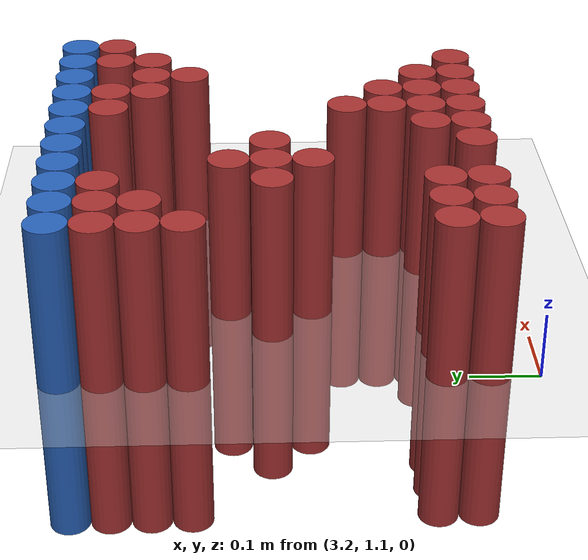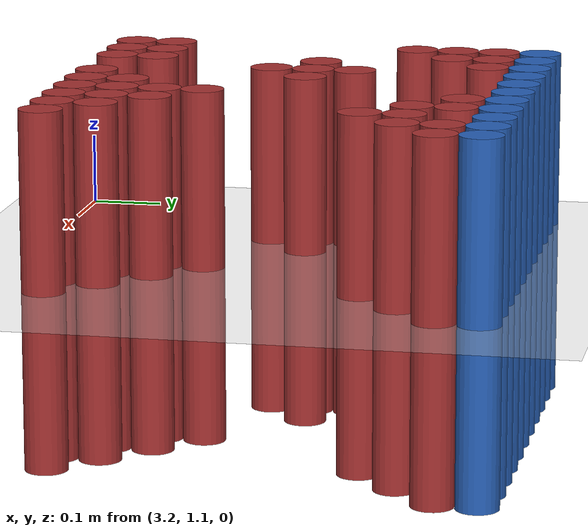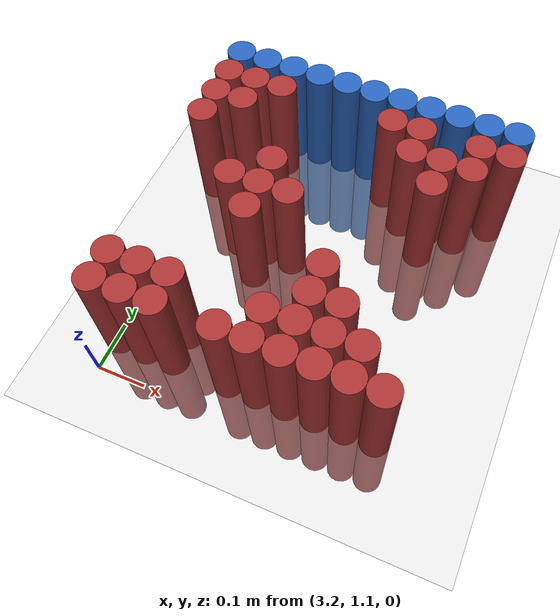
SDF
<sdf version="1.6">
 <world name="default">
  <model name="ground_plane">
   <static>1</static>
   <link name="link">
    <collision name="collision">
     <geometry><plane><normal>0 0 1</normal><size>100 100</size></plane></geometry>
     <surface><friction><ode><mu>100</mu><mu2>50</mu2></ode></friction></surface>
    </collision>
    <visual name="visual">
     <cast_shadows>0</cast_shadows>
     <geometry><plane><normal>0 0 1</normal><size>100 100</size></plane></geometry>
     <material>
      <script><uri>file://media/materials/scripts/gazebo.material</uri><name>Gazebo/Grey</name></script>
     </material>
    </visual>
   </link>
  </model>
  <model name="unit_cylinder_114">
   <static>1</static>
   <pose>3.210000 1.770000 0.000000 0.000000 0.000000 0.000000</pose>
   <link name="link">
    <inertial>
     <mass>1</mass>
     <inertia><ixx>0.145833</ixx><ixy>0</ixy><ixz>0</ixz><iyy>0.145833</iyy><iyz>0</iyz><izz>0.125</izz></inertia>
    </inertial>
    <collision name="collision">
     <geometry><cylinder><radius>0.030000</radius><length>0.5</length></cylinder></geometry>
    </collision>
    <visual name="visual">
     <geometry><cylinder><radius>0.030000</radius><length>0.5</length></cylinder></geometry>
     <material>
      <ambient>0.152000 0.379000 0.720000 1</ambient>
      <diffuse>0.152000 0.379000 0.720000 1</diffuse>
     </material>
     <material>
      <script><name>Gazebo/Grey</name><uri>file://media/materials/scripts/gazebo.material</uri></script>
     </material>
    </visual>
   </link>
  </model>
  <model name="unit_cylinder_115">
   <static>1</static>
   <pose>3.270000 1.770000 0.000000 0.000000 0.000000 0.000000</pose>
   <link name="link">
    <inertial>
     <mass>1</mass>
     <inertia><ixx>0.145833</ixx><ixy>0</ixy><ixz>0</ixz><iyy>0.145833</iyy><iyz>0</iyz><izz>0.125</izz></inertia>
    </inertial>
    <collision name="collision">
     <geometry><cylinder><radius>0.030000</radius><length>0.5</length></cylinder></geometry>
    </collision>
    <visual name="visual">
     <geometry><cylinder><radius>0.030000</radius><length>0.5</length></cylinder></geometry>
     <material>
      <ambient>0.152000 0.379000 0.720000 1</ambient>
      <diffuse>0.152000 0.379000 0.720000 1</diffuse>
     </material>
     <material>
      <script><name>Gazebo/Grey</name><uri>file://media/materials/scripts/gazebo.material</uri></script>
     </material>
    </visual>
   </link>
  </model>
  <model name="unit_cylinder_116">
   <static>1</static>
   <pose>3.330000 1.770000 0.000000 0.000000 0.000000 0.000000</pose>
   <link name="link">
    <inertial>
     <mass>1</mass>
     <inertia><ixx>0.145833</ixx><ixy>0</ixy><ixz>0</ixz><iyy>0.145833</iyy><iyz>0</iyz><izz>0.125</izz></inertia>
    </inertial>
    <collision name="collision">
     <geometry><cylinder><radius>0.030000</radius><length>0.5</length></cylinder></geometry>
    </collision>
    <visual name="visual">
     <geometry><cylinder><radius>0.030000</radius><length>0.5</length></cylinder></geometry>
     <material>
      <ambient>0.152000 0.379000 0.720000 1</ambient>
      <diffuse>0.152000 0.379000 0.720000 1</diffuse>
     </material>
     <material>
      <script><name>Gazebo/Grey</name><uri>file://media/materials/scripts/gazebo.material</uri></script>
     </material>
    </visual>
   </link>
  </model>
  <model name="unit_cylinder_117">
   <static>1</static>
   <pose>3.390000 1.770000 0.000000 0.000000 0.000000 0.000000</pose>
   <link name="link">
    <inertial>
     <mass>1</mass>
     <inertia><ixx>0.145833</ixx><ixy>0</ixy><ixz>0</ixz><iyy>0.145833</iyy><iyz>0</iyz><izz>0.125</izz></inertia>
    </inertial>
    <collision name="collision">
     <geometry><cylinder><radius>0.030000</radius><length>0.5</length></cylinder></geometry>
    </collision>
    <visual name="visual">
     <geometry><cylinder><radius>0.030000</radius><length>0.5</length></cylinder></geometry>
     <material>
      <ambient>0.152000 0.379000 0.720000 1</ambient>
      <diffuse>0.152000 0.379000 0.720000 1</diffuse>
     </material>
     <material>
      <script><name>Gazebo/Grey</name><uri>file://media/materials/scripts/gazebo.material</uri></script>
     </material>
    </visual>
   </link>
  </model>
  <model name="unit_cylinder_118">
   <static>1</static>
   <pose>3.450000 1.770000 0.000000 0.000000 0.000000 0.000000</pose>
   <link name="link">
    <inertial>
     <mass>1</mass>
     <inertia><ixx>0.145833</ixx><ixy>0</ixy><ixz>0</ixz><iyy>0.145833</iyy><iyz>0</iyz><izz>0.125</izz></inertia>
    </inertial>
    <collision name="collision">
     <geometry><cylinder><radius>0.030000</radius><length>0.5</length></cylinder></geometry>
    </collision>
    <visual name="visual">
     <geometry><cylinder><radius>0.030000</radius><length>0.5</length></cylinder></geometry>
     <material>
      <ambient>0.152000 0.379000 0.720000 1</ambient>
      <diffuse>0.152000 0.379000 0.720000 1</diffuse>
     </material>
     <material>
      <script><name>Gazebo/Grey</name><uri>file://media/materials/scripts/gazebo.material</uri></script>
     </material>
    </visual>
   </link>
  </model>
  <model name="unit_cylinder_119">
   <static>1</static>
   <pose>3.510000 1.770000 0.000000 0.000000 0.000000 0.000000</pose>
   <link name="link">
    <inertial>
     <mass>1</mass>
     <inertia><ixx>0.145833</ixx><ixy>0</ixy><ixz>0</ixz><iyy>0.145833</iyy><iyz>0</iyz><izz>0.125</izz></inertia>
    </inertial>
    <collision name="collision">
     <geometry><cylinder><radius>0.030000</radius><length>0.5</length></cylinder></geometry>
    </collision>
    <visual name="visual">
     <geometry><cylinder><radius>0.030000</radius><length>0.5</length></cylinder></geometry>
     <material>
      <ambient>0.152000 0.379000 0.720000 1</ambient>
      <diffuse>0.152000 0.379000 0.720000 1</diffuse>
     </material>
     <material>
      <script><name>Gazebo/Grey</name><uri>file://media/materials/scripts/gazebo.material</uri></script>
     </material>
    </visual>
   </link>
  </model>
  <model name="unit_cylinder_120">
   <static>1</static>
   <pose>3.570000 1.770000 0.000000 0.000000 0.000000 0.000000</pose>
   <link name="link">
    <inertial>
     <mass>1</mass>
     <inertia><ixx>0.145833</ixx><ixy>0</ixy><ixz>0</ixz><iyy>0.145833</iyy><iyz>0</iyz><izz>0.125</izz></inertia>
    </inertial>
    <collision name="collision">
     <geometry><cylinder><radius>0.030000</radius><length>0.5</length></cylinder></geometry>
    </collision>
    <visual name="visual">
     <geometry><cylinder><radius>0.030000</radius><length>0.5</length></cylinder></geometry>
     <material>
      <ambient>0.152000 0.379000 0.720000 1</ambient>
      <diffuse>0.152000 0.379000 0.720000 1</diffuse>
     </material>
     <material>
      <script><name>Gazebo/Grey</name><uri>file://media/materials/scripts/gazebo.material</uri></script>
     </material>
    </visual>
   </link>
  </model>
  <model name="unit_cylinder_121">
   <static>1</static>
   <pose>3.630000 1.770000 0.000000 0.000000 0.000000 0.000000</pose>
   <link name="link">
    <inertial>
     <mass>1</mass>
     <inertia><ixx>0.145833</ixx><ixy>0</ixy><ixz>0</ixz><iyy>0.145833</iyy><iyz>0</iyz><izz>0.125</izz></inertia>
    </inertial>
    <collision name="collision">
     <geometry><cylinder><radius>0.030000</radius><length>0.5</length></cylinder></geometry>
    </collision>
    <visual name="visual">
     <geometry><cylinder><radius>0.030000</radius><length>0.5</length></cylinder></geometry>
     <material>
      <ambient>0.152000 0.379000 0.720000 1</ambient>
      <diffuse>0.152000 0.379000 0.720000 1</diffuse>
     </material>
     <material>
      <script><name>Gazebo/Grey</name><uri>file://media/materials/scripts/gazebo.material</uri></script>
     </material>
    </visual>
   </link>
  </model>
  <model name="unit_cylinder_122">
   <static>1</static>
   <pose>3.690000 1.770000 0.000000 0.000000 0.000000 0.000000</pose>
   <link name="link">
    <inertial>
     <mass>1</mass>
     <inertia><ixx>0.145833</ixx><ixy>0</ixy><ixz>0</ixz><iyy>0.145833</iyy><iyz>0</iyz><izz>0.125</izz></inertia>
    </inertial>
    <collision name="collision">
     <geometry><cylinder><radius>0.030000</radius><length>0.5</length></cylinder></geometry>
    </collision>
    <visual name="visual">
     <geometry><cylinder><radius>0.030000</radius><length>0.5</length></cylinder></geometry>
     <material>
      <ambient>0.152000 0.379000 0.720000 1</ambient>
      <diffuse>0.152000 0.379000 0.720000 1</diffuse>
     </material>
     <material>
      <script><name>Gazebo/Grey</name><uri>file://media/materials/scripts/gazebo.material</uri></script>
     </material>
    </visual>
   </link>
  </model>
  <model name="unit_cylinder_123">
   <static>1</static>
   <pose>3.750000 1.770000 0.000000 0.000000 0.000000 0.000000</pose>
   <link name="link">
    <inertial>
     <mass>1</mass>
     <inertia><ixx>0.145833</ixx><ixy>0</ixy><ixz>0</ixz><iyy>0.145833</iyy><iyz>0</iyz><izz>0.125</izz></inertia>
    </inertial>
    <collision name="collision">
     <geometry><cylinder><radius>0.030000</radius><length>0.5</length></cylinder></geometry>
    </collision>
    <visual name="visual">
     <geometry><cylinder><radius>0.030000</radius><length>0.5</length></cylinder></geometry>
     <material>
      <ambient>0.152000 0.379000 0.720000 1</ambient>
      <diffuse>0.152000 0.379000 0.720000 1</diffuse>
     </material>
     <material>
      <script><name>Gazebo/Grey</name><uri>file://media/materials/scripts/gazebo.material</uri></script>
     </material>
    </visual>
   </link>
  </model>
  <model name="unit_cylinder_124">
   <static>1</static>
   <pose>3.810000 1.770000 0.000000 0.000000 0.000000 0.000000</pose>
   <link name="link">
    <inertial>
     <mass>1</mass>
     <inertia><ixx>0.145833</ixx><ixy>0</ixy><ixz>0</ixz><iyy>0.145833</iyy><iyz>0</iyz><izz>0.125</izz></inertia>
    </inertial>
    <collision name="collision">
     <geometry><cylinder><radius>0.030000</radius><length>0.5</length></cylinder></geometry>
    </collision>
    <visual name="visual">
     <geometry><cylinder><radius>0.030000</radius><length>0.5</length></cylinder></geometry>
     <material>
      <ambient>0.152000 0.379000 0.720000 1</ambient>
      <diffuse>0.152000 0.379000 0.720000 1</diffuse>
     </material>
     <material>
      <script><name>Gazebo/Grey</name><uri>file://media/materials/scripts/gazebo.material</uri></script>
     </material>
    </visual>
   </link>
  </model>
  <model name="unit_cylinder_136">
   <static>1</static>
   <pose>3.210000 1.710000 0.000000 0.000000 0.000000 0.000000</pose>
   <link name="link">
    <inertial>
     <mass>1</mass>
     <inertia><ixx>0.145833</ixx><ixy>0</ixy><ixz>0</ixz><iyy>0.145833</iyy><iyz>0</iyz><izz>0.125</izz></inertia>
    </inertial>
    <collision name="collision">
     <geometry><cylinder><radius>0.030000</radius><length>0.5</length></cylinder></geometry>
    </collision>
    <visual name="visual">
     <geometry><cylinder><radius>0.030000</radius><length>0.5</length></cylinder></geometry>
     <material>
      <ambient>0.648000 0.192000 0.192000 1</ambient>
      <diffuse>0.648000 0.192000 0.192000 1</diffuse>
     </material>
     <material>
      <script><name>Gazebo/Grey</name><uri>file://media/materials/scripts/gazebo.material</uri></script>
     </material>
    </visual>
   </link>
  </model>
  <model name="unit_cylinder_137">
   <static>1</static>
   <pose>3.270000 1.710000 0.000000 0.000000 0.000000 0.000000</pose>
   <link name="link">
    <inertial>
     <mass>1</mass>
     <inertia><ixx>0.145833</ixx><ixy>0</ixy><ixz>0</ixz><iyy>0.145833</iyy><iyz>0</iyz><izz>0.125</izz></inertia>
    </inertial>
    <collision name="collision">
     <geometry><cylinder><radius>0.030000</radius><length>0.5</length></cylinder></geometry>
    </collision>
    <visual name="visual">
     <geometry><cylinder><radius>0.030000</radius><length>0.5</length></cylinder></geometry>
     <material>
      <ambient>0.648000 0.192000 0.192000 1</ambient>
      <diffuse>0.648000 0.192000 0.192000 1</diffuse>
     </material>
     <material>
      <script><name>Gazebo/Grey</name><uri>file://media/materials/scripts/gazebo.material</uri></script>
     </material>
    </visual>
   </link>
  </model>
  <model name="unit_cylinder_138">
   <static>1</static>
   <pose>3.330000 1.710000 0.000000 0.000000 0.000000 0.000000</pose>
   <link name="link">
    <inertial>
     <mass>1</mass>
     <inertia><ixx>0.145833</ixx><ixy>0</ixy><ixz>0</ixz><iyy>0.145833</iyy><iyz>0</iyz><izz>0.125</izz></inertia>
    </inertial>
    <collision name="collision">
     <geometry><cylinder><radius>0.030000</radius><length>0.5</length></cylinder></geometry>
    </collision>
    <visual name="visual">
     <geometry><cylinder><radius>0.030000</radius><length>0.5</length></cylinder></geometry>
     <material>
      <ambient>0.648000 0.192000 0.192000 1</ambient>
      <diffuse>0.648000 0.192000 0.192000 1</diffuse>
     </material>
     <material>
      <script><name>Gazebo/Grey</name><uri>file://media/materials/scripts/gazebo.material</uri></script>
     </material>
    </visual>
   </link>
  </model>
  <model name="unit_cylinder_139">
   <static>1</static>
   <pose>3.570000 1.710000 0.000000 0.000000 0.000000 0.000000</pose>
   <link name="link">
    <inertial>
     <mass>1</mass>
     <inertia><ixx>0.145833</ixx><ixy>0</ixy><ixz>0</ixz><iyy>0.145833</iyy><iyz>0</iyz><izz>0.125</izz></inertia>
    </inertial>
    <collision name="collision">
     <geometry><cylinder><radius>0.030000</radius><length>0.5</length></cylinder></geometry>
    </collision>
    <visual name="visual">
     <geometry><cylinder><radius>0.030000</radius><length>0.5</length></cylinder></geometry>
     <material>
      <ambient>0.648000 0.192000 0.192000 1</ambient>
      <diffuse>0.648000 0.192000 0.192000 1</diffuse>
     </material>
     <material>
      <script><name>Gazebo/Grey</name><uri>file://media/materials/scripts/gazebo.material</uri></script>
     </material>
    </visual>
   </link>
  </model>
  <model name="unit_cylinder_140">
   <static>1</static>
   <pose>3.630000 1.710000 0.000000 0.000000 0.000000 0.000000</pose>
   <link name="link">
    <inertial>
     <mass>1</mass>
     <inertia><ixx>0.145833</ixx><ixy>0</ixy><ixz>0</ixz><iyy>0.145833</iyy><iyz>0</iyz><izz>0.125</izz></inertia>
    </inertial>
    <collision name="collision">
     <geometry><cylinder><radius>0.030000</radius><length>0.5</length></cylinder></geometry>
    </collision>
    <visual name="visual">
     <geometry><cylinder><radius>0.030000</radius><length>0.5</length></cylinder></geometry>
     <material>
      <ambient>0.648000 0.192000 0.192000 1</ambient>
      <diffuse>0.648000 0.192000 0.192000 1</diffuse>
     </material>
     <material>
      <script><name>Gazebo/Grey</name><uri>file://media/materials/scripts/gazebo.material</uri></script>
     </material>
    </visual>
   </link>
  </model>
  <model name="unit_cylinder_141">
   <static>1</static>
   <pose>3.750000 1.710000 0.000000 0.000000 0.000000 0.000000</pose>
   <link name="link">
    <inertial>
     <mass>1</mass>
     <inertia><ixx>0.145833</ixx><ixy>0</ixy><ixz>0</ixz><iyy>0.145833</iyy><iyz>0</iyz><izz>0.125</izz></inertia>
    </inertial>
    <collision name="collision">
     <geometry><cylinder><radius>0.030000</radius><length>0.5</length></cylinder></geometry>
    </collision>
    <visual name="visual">
     <geometry><cylinder><radius>0.030000</radius><length>0.5</length></cylinder></geometry>
     <material>
      <ambient>0.648000 0.192000 0.192000 1</ambient>
      <diffuse>0.648000 0.192000 0.192000 1</diffuse>
     </material>
     <material>
      <script><name>Gazebo/Grey</name><uri>file://media/materials/scripts/gazebo.material</uri></script>
     </material>
    </visual>
   </link>
  </model>
  <model name="unit_cylinder_142">
   <static>1</static>
   <pose>3.810000 1.710000 0.000000 0.000000 0.000000 0.000000</pose>
   <link name="link">
    <inertial>
     <mass>1</mass>
     <inertia><ixx>0.145833</ixx><ixy>0</ixy><ixz>0</ixz><iyy>0.145833</iyy><iyz>0</iyz><izz>0.125</izz></inertia>
    </inertial>
    <collision name="collision">
     <geometry><cylinder><radius>0.030000</radius><length>0.5</length></cylinder></geometry>
    </collision>
    <visual name="visual">
     <geometry><cylinder><radius>0.030000</radius><length>0.5</length></cylinder></geometry>
     <material>
      <ambient>0.648000 0.192000 0.192000 1</ambient>
      <diffuse>0.648000 0.192000 0.192000 1</diffuse>
     </material>
     <material>
      <script><name>Gazebo/Grey</name><uri>file://media/materials/scripts/gazebo.material</uri></script>
     </material>
    </visual>
   </link>
  </model>
  <model name="unit_cylinder_147">
   <static>1</static>
   <pose>3.210000 1.650000 0.000000 0.000000 0.000000 0.000000</pose>
   <link name="link">
    <inertial>
     <mass>1</mass>
     <inertia><ixx>0.145833</ixx><ixy>0</ixy><ixz>0</ixz><iyy>0.145833</iyy><iyz>0</iyz><izz>0.125</izz></inertia>
    </inertial>
    <collision name="collision">
     <geometry><cylinder><radius>0.030000</radius><length>0.5</length></cylinder></geometry>
    </collision>
    <visual name="visual">
     <geometry><cylinder><radius>0.030000</radius><length>0.5</length></cylinder></geometry>
     <material>
      <ambient>0.648000 0.192000 0.192000 1</ambient>
      <diffuse>0.648000 0.192000 0.192000 1</diffuse>
     </material>
     <material>
      <script><name>Gazebo/Grey</name><uri>file://media/materials/scripts/gazebo.material</uri></script>
     </material>
    </visual>
   </link>
  </model>
  <model name="unit_cylinder_148">
   <static>1</static>
   <pose>3.270000 1.650000 0.000000 0.000000 0.000000 0.000000</pose>
   <link name="link">
    <inertial>
     <mass>1</mass>
     <inertia><ixx>0.145833</ixx><ixy>0</ixy><ixz>0</ixz><iyy>0.145833</iyy><iyz>0</iyz><izz>0.125</izz></inertia>
    </inertial>
    <collision name="collision">
     <geometry><cylinder><radius>0.030000</radius><length>0.5</length></cylinder></geometry>
    </collision>
    <visual name="visual">
     <geometry><cylinder><radius>0.030000</radius><length>0.5</length></cylinder></geometry>
     <material>
      <ambient>0.648000 0.192000 0.192000 1</ambient>
      <diffuse>0.648000 0.192000 0.192000 1</diffuse>
     </material>
     <material>
      <script><name>Gazebo/Grey</name><uri>file://media/materials/scripts/gazebo.material</uri></script>
     </material>
    </visual>
   </link>
  </model>
  <model name="unit_cylinder_149">
   <static>1</static>
   <pose>3.630000 1.650000 0.000000 0.000000 0.000000 0.000000</pose>
   <link name="link">
    <inertial>
     <mass>1</mass>
     <inertia><ixx>0.145833</ixx><ixy>0</ixy><ixz>0</ixz><iyy>0.145833</iyy><iyz>0</iyz><izz>0.125</izz></inertia>
    </inertial>
    <collision name="collision">
     <geometry><cylinder><radius>0.030000</radius><length>0.5</length></cylinder></geometry>
    </collision>
    <visual name="visual">
     <geometry><cylinder><radius>0.030000</radius><length>0.5</length></cylinder></geometry>
     <material>
      <ambient>0.648000 0.192000 0.192000 1</ambient>
      <diffuse>0.648000 0.192000 0.192000 1</diffuse>
     </material>
     <material>
      <script><name>Gazebo/Grey</name><uri>file://media/materials/scripts/gazebo.material</uri></script>
     </material>
    </visual>
   </link>
  </model>
  <model name="unit_cylinder_150">
   <static>1</static>
   <pose>3.690000 1.650000 0.000000 0.000000 0.000000 0.000000</pose>
   <link name="link">
    <inertial>
     <mass>1</mass>
     <inertia><ixx>0.145833</ixx><ixy>0</ixy><ixz>0</ixz><iyy>0.145833</iyy><iyz>0</iyz><izz>0.125</izz></inertia>
    </inertial>
    <collision name="collision">
     <geometry><cylinder><radius>0.030000</radius><length>0.5</length></cylinder></geometry>
    </collision>
    <visual name="visual">
     <geometry><cylinder><radius>0.030000</radius><length>0.5</length></cylinder></geometry>
     <material>
      <ambient>0.648000 0.192000 0.192000 1</ambient>
      <diffuse>0.648000 0.192000 0.192000 1</diffuse>
     </material>
     <material>
      <script><name>Gazebo/Grey</name><uri>file://media/materials/scripts/gazebo.material</uri></script>
     </material>
    </visual>
   </link>
  </model>
  <model name="unit_cylinder_151">
   <static>1</static>
   <pose>3.750000 1.650000 0.000000 0.000000 0.000000 0.000000</pose>
   <link name="link">
    <inertial>
     <mass>1</mass>
     <inertia><ixx>0.145833</ixx><ixy>0</ixy><ixz>0</ixz><iyy>0.145833</iyy><iyz>0</iyz><izz>0.125</izz></inertia>
    </inertial>
    <collision name="collision">
     <geometry><cylinder><radius>0.030000</radius><length>0.5</length></cylinder></geometry>
    </collision>
    <visual name="visual">
     <geometry><cylinder><radius>0.030000</radius><length>0.5</length></cylinder></geometry>
     <material>
      <ambient>0.648000 0.192000 0.192000 1</ambient>
      <diffuse>0.648000 0.192000 0.192000 1</diffuse>
     </material>
     <material>
      <script><name>Gazebo/Grey</name><uri>file://media/materials/scripts/gazebo.material</uri></script>
     </material>
    </visual>
   </link>
  </model>
  <model name="unit_cylinder_155">
   <static>1</static>
   <pose>3.210000 1.590000 0.000000 0.000000 0.000000 0.000000</pose>
   <link name="link">
    <inertial>
     <mass>1</mass>
     <inertia><ixx>0.145833</ixx><ixy>0</ixy><ixz>0</ixz><iyy>0.145833</iyy><iyz>0</iyz><izz>0.125</izz></inertia>
    </inertial>
    <collision name="collision">
     <geometry><cylinder><radius>0.030000</radius><length>0.5</length></cylinder></geometry>
    </collision>
    <visual name="visual">
     <geometry><cylinder><radius>0.030000</radius><length>0.5</length></cylinder></geometry>
     <material>
      <ambient>0.648000 0.192000 0.192000 1</ambient>
      <diffuse>0.648000 0.192000 0.192000 1</diffuse>
     </material>
     <material>
      <script><name>Gazebo/Grey</name><uri>file://media/materials/scripts/gazebo.material</uri></script>
     </material>
    </visual>
   </link>
  </model>
  <model name="unit_cylinder_156">
   <static>1</static>
   <pose>3.690000 1.590000 0.000000 0.000000 0.000000 0.000000</pose>
   <link name="link">
    <inertial>
     <mass>1</mass>
     <inertia><ixx>0.145833</ixx><ixy>0</ixy><ixz>0</ixz><iyy>0.145833</iyy><iyz>0</iyz><izz>0.125</izz></inertia>
    </inertial>
    <collision name="collision">
     <geometry><cylinder><radius>0.030000</radius><length>0.5</length></cylinder></geometry>
    </collision>
    <visual name="visual">
     <geometry><cylinder><radius>0.030000</radius><length>0.5</length></cylinder></geometry>
     <material>
      <ambient>0.648000 0.192000 0.192000 1</ambient>
      <diffuse>0.648000 0.192000 0.192000 1</diffuse>
     </material>
     <material>
      <script><name>Gazebo/Grey</name><uri>file://media/materials/scripts/gazebo.material</uri></script>
     </material>
    </visual>
   </link>
  </model>
  <model name="unit_cylinder_165">
   <static>1</static>
   <pose>3.390000 1.530000 0.000000 0.000000 0.000000 0.000000</pose>
   <link name="link">
    <inertial>
     <mass>1</mass>
     <inertia><ixx>0.145833</ixx><ixy>0</ixy><ixz>0</ixz><iyy>0.145833</iyy><iyz>0</iyz><izz>0.125</izz></inertia>
    </inertial>
    <collision name="collision">
     <geometry><cylinder><radius>0.030000</radius><length>0.5</length></cylinder></geometry>
    </collision>
    <visual name="visual">
     <geometry><cylinder><radius>0.030000</radius><length>0.5</length></cylinder></geometry>
     <material>
      <ambient>0.648000 0.192000 0.192000 1</ambient>
      <diffuse>0.648000 0.192000 0.192000 1</diffuse>
     </material>
     <material>
      <script><name>Gazebo/Grey</name><uri>file://media/materials/scripts/gazebo.material</uri></script>
     </material>
    </visual>
   </link>
  </model>
  <model name="unit_cylinder_171">
   <static>1</static>
   <pose>3.330000 1.470000 0.000000 0.000000 0.000000 0.000000</pose>
   <link name="link">
    <inertial>
     <mass>1</mass>
     <inertia><ixx>0.145833</ixx><ixy>0</ixy><ixz>0</ixz><iyy>0.145833</iyy><iyz>0</iyz><izz>0.125</izz></inertia>
    </inertial>
    <collision name="collision">
     <geometry><cylinder><radius>0.030000</radius><length>0.5</length></cylinder></geometry>
    </collision>
    <visual name="visual">
     <geometry><cylinder><radius>0.030000</radius><length>0.5</length></cylinder></geometry>
     <material>
      <ambient>0.648000 0.192000 0.192000 1</ambient>
      <diffuse>0.648000 0.192000 0.192000 1</diffuse>
     </material>
     <material>
      <script><name>Gazebo/Grey</name><uri>file://media/materials/scripts/gazebo.material</uri></script>
     </material>
    </visual>
   </link>
  </model>
  <model name="unit_cylinder_172">
   <static>1</static>
   <pose>3.390000 1.470000 0.000000 0.000000 0.000000 0.000000</pose>
   <link name="link">
    <inertial>
     <mass>1</mass>
     <inertia><ixx>0.145833</ixx><ixy>0</ixy><ixz>0</ixz><iyy>0.145833</iyy><iyz>0</iyz><izz>0.125</izz></inertia>
    </inertial>
    <collision name="collision">
     <geometry><cylinder><radius>0.030000</radius><length>0.5</length></cylinder></geometry>
    </collision>
    <visual name="visual">
     <geometry><cylinder><radius>0.030000</radius><length>0.5</length></cylinder></geometry>
     <material>
      <ambient>0.648000 0.192000 0.192000 1</ambient>
      <diffuse>0.648000 0.192000 0.192000 1</diffuse>
     </material>
     <material>
      <script><name>Gazebo/Grey</name><uri>file://media/materials/scripts/gazebo.material</uri></script>
     </material>
    </visual>
   </link>
  </model>
  <model name="unit_cylinder_173">
   <static>1</static>
   <pose>3.450000 1.470000 0.000000 0.000000 0.000000 0.000000</pose>
   <link name="link">
    <inertial>
     <mass>1</mass>
     <inertia><ixx>0.145833</ixx><ixy>0</ixy><ixz>0</ixz><iyy>0.145833</iyy><iyz>0</iyz><izz>0.125</izz></inertia>
    </inertial>
    <collision name="collision">
     <geometry><cylinder><radius>0.030000</radius><length>0.5</length></cylinder></geometry>
    </collision>
    <visual name="visual">
     <geometry><cylinder><radius>0.030000</radius><length>0.5</length></cylinder></geometry>
     <material>
      <ambient>0.648000 0.192000 0.192000 1</ambient>
      <diffuse>0.648000 0.192000 0.192000 1</diffuse>
     </material>
     <material>
      <script><name>Gazebo/Grey</name><uri>file://media/materials/scripts/gazebo.material</uri></script>
     </material>
    </visual>
   </link>
  </model>
  <model name="unit_cylinder_182">
   <static>1</static>
   <pose>3.390000 1.410000 0.000000 0.000000 0.000000 0.000000</pose>
   <link name="link">
    <inertial>
     <mass>1</mass>
     <inertia><ixx>0.145833</ixx><ixy>0</ixy><ixz>0</ixz><iyy>0.145833</iyy><iyz>0</iyz><izz>0.125</izz></inertia>
    </inertial>
    <collision name="collision">
     <geometry><cylinder><radius>0.030000</radius><length>0.5</length></cylinder></geometry>
    </collision>
    <visual name="visual">
     <geometry><cylinder><radius>0.030000</radius><length>0.5</length></cylinder></geometry>
     <material>
      <ambient>0.648000 0.192000 0.192000 1</ambient>
      <diffuse>0.648000 0.192000 0.192000 1</diffuse>
     </material>
     <material>
      <script><name>Gazebo/Grey</name><uri>file://media/materials/scripts/gazebo.material</uri></script>
     </material>
    </visual>
   </link>
  </model>
  <model name="unit_cylinder_191">
   <static>1</static>
   <pose>3.570000 1.350000 0.000000 0.000000 0.000000 0.000000</pose>
   <link name="link">
    <inertial>
     <mass>1</mass>
     <inertia><ixx>0.145833</ixx><ixy>0</ixy><ixz>0</ixz><iyy>0.145833</iyy><iyz>0</iyz><izz>0.125</izz></inertia>
    </inertial>
    <collision name="collision">
     <geometry><cylinder><radius>0.030000</radius><length>0.5</length></cylinder></geometry>
    </collision>
    <visual name="visual">
     <geometry><cylinder><radius>0.030000</radius><length>0.5</length></cylinder></geometry>
     <material>
      <ambient>0.648000 0.192000 0.192000 1</ambient>
      <diffuse>0.648000 0.192000 0.192000 1</diffuse>
     </material>
     <material>
      <script><name>Gazebo/Grey</name><uri>file://media/materials/scripts/gazebo.material</uri></script>
     </material>
    </visual>
   </link>
  </model>
  <model name="unit_cylinder_199">
   <static>1</static>
   <pose>3.570000 1.290000 0.000000 0.000000 0.000000 0.000000</pose>
   <link name="link">
    <inertial>
     <mass>1</mass>
     <inertia><ixx>0.145833</ixx><ixy>0</ixy><ixz>0</ixz><iyy>0.145833</iyy><iyz>0</iyz><izz>0.125</izz></inertia>
    </inertial>
    <collision name="collision">
     <geometry><cylinder><radius>0.030000</radius><length>0.5</length></cylinder></geometry>
    </collision>
    <visual name="visual">
     <geometry><cylinder><radius>0.030000</radius><length>0.5</length></cylinder></geometry>
     <material>
      <ambient>0.648000 0.192000 0.192000 1</ambient>
      <diffuse>0.648000 0.192000 0.192000 1</diffuse>
     </material>
     <material>
      <script><name>Gazebo/Grey</name><uri>file://media/materials/scripts/gazebo.material</uri></script>
     </material>
    </visual>
   </link>
  </model>
  <model name="unit_cylinder_200">
   <static>1</static>
   <pose>3.630000 1.290000 0.000000 0.000000 0.000000 0.000000</pose>
   <link name="link">
    <inertial>
     <mass>1</mass>
     <inertia><ixx>0.145833</ixx><ixy>0</ixy><ixz>0</ixz><iyy>0.145833</iyy><iyz>0</iyz><izz>0.125</izz></inertia>
    </inertial>
    <collision name="collision">
     <geometry><cylinder><radius>0.030000</radius><length>0.5</length></cylinder></geometry>
    </collision>
    <visual name="visual">
     <geometry><cylinder><radius>0.030000</radius><length>0.5</length></cylinder></geometry>
     <material>
      <ambient>0.648000 0.192000 0.192000 1</ambient>
      <diffuse>0.648000 0.192000 0.192000 1</diffuse>
     </material>
     <material>
      <script><name>Gazebo/Grey</name><uri>file://media/materials/scripts/gazebo.material</uri></script>
     </material>
    </visual>
   </link>
  </model>
  <model name="unit_cylinder_204">
   <static>1</static>
   <pose>3.210000 1.230000 0.000000 0.000000 0.000000 0.000000</pose>
   <link name="link">
    <inertial>
     <mass>1</mass>
     <inertia><ixx>0.145833</ixx><ixy>0</ixy><ixz>0</ixz><iyy>0.145833</iyy><iyz>0</iyz><izz>0.125</izz></inertia>
    </inertial>
    <collision name="collision">
     <geometry><cylinder><radius>0.030000</radius><length>0.5</length></cylinder></geometry>
    </collision>
    <visual name="visual">
     <geometry><cylinder><radius>0.030000</radius><length>0.5</length></cylinder></geometry>
     <material>
      <ambient>0.648000 0.192000 0.192000 1</ambient>
      <diffuse>0.648000 0.192000 0.192000 1</diffuse>
     </material>
     <material>
      <script><name>Gazebo/Grey</name><uri>file://media/materials/scripts/gazebo.material</uri></script>
     </material>
    </visual>
   </link>
  </model>
  <model name="unit_cylinder_205">
   <static>1</static>
   <pose>3.270000 1.230000 0.000000 0.000000 0.000000 0.000000</pose>
   <link name="link">
    <inertial>
     <mass>1</mass>
     <inertia><ixx>0.145833</ixx><ixy>0</ixy><ixz>0</ixz><iyy>0.145833</iyy><iyz>0</iyz><izz>0.125</izz></inertia>
    </inertial>
    <collision name="collision">
     <geometry><cylinder><radius>0.030000</radius><length>0.5</length></cylinder></geometry>
    </collision>
    <visual name="visual">
     <geometry><cylinder><radius>0.030000</radius><length>0.5</length></cylinder></geometry>
     <material>
      <ambient>0.648000 0.192000 0.192000 1</ambient>
      <diffuse>0.648000 0.192000 0.192000 1</diffuse>
     </material>
     <material>
      <script><name>Gazebo/Grey</name><uri>file://media/materials/scripts/gazebo.material</uri></script>
     </material>
    </visual>
   </link>
  </model>
  <model name="unit_cylinder_206">
   <static>1</static>
   <pose>3.330000 1.230000 0.000000 0.000000 0.000000 0.000000</pose>
   <link name="link">
    <inertial>
     <mass>1</mass>
     <inertia><ixx>0.145833</ixx><ixy>0</ixy><ixz>0</ixz><iyy>0.145833</iyy><iyz>0</iyz><izz>0.125</izz></inertia>
    </inertial>
    <collision name="collision">
     <geometry><cylinder><radius>0.030000</radius><length>0.5</length></cylinder></geometry>
    </collision>
    <visual name="visual">
     <geometry><cylinder><radius>0.030000</radius><length>0.5</length></cylinder></geometry>
     <material>
      <ambient>0.648000 0.192000 0.192000 1</ambient>
      <diffuse>0.648000 0.192000 0.192000 1</diffuse>
     </material>
     <material>
      <script><name>Gazebo/Grey</name><uri>file://media/materials/scripts/gazebo.material</uri></script>
     </material>
    </visual>
   </link>
  </model>
  <model name="unit_cylinder_207">
   <static>1</static>
   <pose>3.510000 1.230000 0.000000 0.000000 0.000000 0.000000</pose>
   <link name="link">
    <inertial>
     <mass>1</mass>
     <inertia><ixx>0.145833</ixx><ixy>0</ixy><ixz>0</ixz><iyy>0.145833</iyy><iyz>0</iyz><izz>0.125</izz></inertia>
    </inertial>
    <collision name="collision">
     <geometry><cylinder><radius>0.030000</radius><length>0.5</length></cylinder></geometry>
    </collision>
    <visual name="visual">
     <geometry><cylinder><radius>0.030000</radius><length>0.5</length></cylinder></geometry>
     <material>
      <ambient>0.648000 0.192000 0.192000 1</ambient>
      <diffuse>0.648000 0.192000 0.192000 1</diffuse>
     </material>
     <material>
      <script><name>Gazebo/Grey</name><uri>file://media/materials/scripts/gazebo.material</uri></script>
     </material>
    </visual>
   </link>
  </model>
  <model name="unit_cylinder_208">
   <static>1</static>
   <pose>3.570000 1.230000 0.000000 0.000000 0.000000 0.000000</pose>
   <link name="link">
    <inertial>
     <mass>1</mass>
     <inertia><ixx>0.145833</ixx><ixy>0</ixy><ixz>0</ixz><iyy>0.145833</iyy><iyz>0</iyz><izz>0.125</izz></inertia>
    </inertial>
    <collision name="collision">
     <geometry><cylinder><radius>0.030000</radius><length>0.5</length></cylinder></geometry>
    </collision>
    <visual name="visual">
     <geometry><cylinder><radius>0.030000</radius><length>0.5</length></cylinder></geometry>
     <material>
      <ambient>0.648000 0.192000 0.192000 1</ambient>
      <diffuse>0.648000 0.192000 0.192000 1</diffuse>
     </material>
     <material>
      <script><name>Gazebo/Grey</name><uri>file://media/materials/scripts/gazebo.material</uri></script>
     </material>
    </visual>
   </link>
  </model>
  <model name="unit_cylinder_209">
   <static>1</static>
   <pose>3.630000 1.230000 0.000000 0.000000 0.000000 0.000000</pose>
   <link name="link">
    <inertial>
     <mass>1</mass>
     <inertia><ixx>0.145833</ixx><ixy>0</ixy><ixz>0</ixz><iyy>0.145833</iyy><iyz>0</iyz><izz>0.125</izz></inertia>
    </inertial>
    <collision name="collision">
     <geometry><cylinder><radius>0.030000</radius><length>0.5</length></cylinder></geometry>
    </collision>
    <visual name="visual">
     <geometry><cylinder><radius>0.030000</radius><length>0.5</length></cylinder></geometry>
     <material>
      <ambient>0.648000 0.192000 0.192000 1</ambient>
      <diffuse>0.648000 0.192000 0.192000 1</diffuse>
     </material>
     <material>
      <script><name>Gazebo/Grey</name><uri>file://media/materials/scripts/gazebo.material</uri></script>
     </material>
    </visual>
   </link>
  </model>
  <model name="unit_cylinder_210">
   <static>1</static>
   <pose>3.690000 1.230000 0.000000 0.000000 0.000000 0.000000</pose>
   <link name="link">
    <inertial>
     <mass>1</mass>
     <inertia><ixx>0.145833</ixx><ixy>0</ixy><ixz>0</ixz><iyy>0.145833</iyy><iyz>0</iyz><izz>0.125</izz></inertia>
    </inertial>
    <collision name="collision">
     <geometry><cylinder><radius>0.030000</radius><length>0.5</length></cylinder></geometry>
    </collision>
    <visual name="visual">
     <geometry><cylinder><radius>0.030000</radius><length>0.5</length></cylinder></geometry>
     <material>
      <ambient>0.648000 0.192000 0.192000 1</ambient>
      <diffuse>0.648000 0.192000 0.192000 1</diffuse>
     </material>
     <material>
      <script><name>Gazebo/Grey</name><uri>file://media/materials/scripts/gazebo.material</uri></script>
     </material>
    </visual>
   </link>
  </model>
  <model name="unit_cylinder_215">
   <static>1</static>
   <pose>3.210000 1.170000 0.000000 0.000000 0.000000 0.000000</pose>
   <link name="link">
    <inertial>
     <mass>1</mass>
     <inertia><ixx>0.145833</ixx><ixy>0</ixy><ixz>0</ixz><iyy>0.145833</iyy><iyz>0</iyz><izz>0.125</izz></inertia>
    </inertial>
    <collision name="collision">
     <geometry><cylinder><radius>0.030000</radius><length>0.5</length></cylinder></geometry>
    </collision>
    <visual name="visual">
     <geometry><cylinder><radius>0.030000</radius><length>0.5</length></cylinder></geometry>
     <material>
      <ambient>0.648000 0.192000 0.192000 1</ambient>
      <diffuse>0.648000 0.192000 0.192000 1</diffuse>
     </material>
     <material>
      <script><name>Gazebo/Grey</name><uri>file://media/materials/scripts/gazebo.material</uri></script>
     </material>
    </visual>
   </link>
  </model>
  <model name="unit_cylinder_216">
   <static>1</static>
   <pose>3.270000 1.170000 0.000000 0.000000 0.000000 0.000000</pose>
   <link name="link">
    <inertial>
     <mass>1</mass>
     <inertia><ixx>0.145833</ixx><ixy>0</ixy><ixz>0</ixz><iyy>0.145833</iyy><iyz>0</iyz><izz>0.125</izz></inertia>
    </inertial>
    <collision name="collision">
     <geometry><cylinder><radius>0.030000</radius><length>0.5</length></cylinder></geometry>
    </collision>
    <visual name="visual">
     <geometry><cylinder><radius>0.030000</radius><length>0.5</length></cylinder></geometry>
     <material>
      <ambient>0.648000 0.192000 0.192000 1</ambient>
      <diffuse>0.648000 0.192000 0.192000 1</diffuse>
     </material>
     <material>
      <script><name>Gazebo/Grey</name><uri>file://media/materials/scripts/gazebo.material</uri></script>
     </material>
    </visual>
   </link>
  </model>
  <model name="unit_cylinder_217">
   <static>1</static>
   <pose>3.330000 1.170000 0.000000 0.000000 0.000000 0.000000</pose>
   <link name="link">
    <inertial>
     <mass>1</mass>
     <inertia><ixx>0.145833</ixx><ixy>0</ixy><ixz>0</ixz><iyy>0.145833</iyy><iyz>0</iyz><izz>0.125</izz></inertia>
    </inertial>
    <collision name="collision">
     <geometry><cylinder><radius>0.030000</radius><length>0.5</length></cylinder></geometry>
    </collision>
    <visual name="visual">
     <geometry><cylinder><radius>0.030000</radius><length>0.5</length></cylinder></geometry>
     <material>
      <ambient>0.648000 0.192000 0.192000 1</ambient>
      <diffuse>0.648000 0.192000 0.192000 1</diffuse>
     </material>
     <material>
      <script><name>Gazebo/Grey</name><uri>file://media/materials/scripts/gazebo.material</uri></script>
     </material>
    </visual>
   </link>
  </model>
  <model name="unit_cylinder_218">
   <static>1</static>
   <pose>3.450000 1.170000 0.000000 0.000000 0.000000 0.000000</pose>
   <link name="link">
    <inertial>
     <mass>1</mass>
     <inertia><ixx>0.145833</ixx><ixy>0</ixy><ixz>0</ixz><iyy>0.145833</iyy><iyz>0</iyz><izz>0.125</izz></inertia>
    </inertial>
    <collision name="collision">
     <geometry><cylinder><radius>0.030000</radius><length>0.5</length></cylinder></geometry>
    </collision>
    <visual name="visual">
     <geometry><cylinder><radius>0.030000</radius><length>0.5</length></cylinder></geometry>
     <material>
      <ambient>0.648000 0.192000 0.192000 1</ambient>
      <diffuse>0.648000 0.192000 0.192000 1</diffuse>
     </material>
     <material>
      <script><name>Gazebo/Grey</name><uri>file://media/materials/scripts/gazebo.material</uri></script>
     </material>
    </visual>
   </link>
  </model>
  <model name="unit_cylinder_219">
   <static>1</static>
   <pose>3.510000 1.170000 0.000000 0.000000 0.000000 0.000000</pose>
   <link name="link">
    <inertial>
     <mass>1</mass>
     <inertia><ixx>0.145833</ixx><ixy>0</ixy><ixz>0</ixz><iyy>0.145833</iyy><iyz>0</iyz><izz>0.125</izz></inertia>
    </inertial>
    <collision name="collision">
     <geometry><cylinder><radius>0.030000</radius><length>0.5</length></cylinder></geometry>
    </collision>
    <visual name="visual">
     <geometry><cylinder><radius>0.030000</radius><length>0.5</length></cylinder></geometry>
     <material>
      <ambient>0.648000 0.192000 0.192000 1</ambient>
      <diffuse>0.648000 0.192000 0.192000 1</diffuse>
     </material>
     <material>
      <script><name>Gazebo/Grey</name><uri>file://media/materials/scripts/gazebo.material</uri></script>
     </material>
    </visual>
   </link>
  </model>
  <model name="unit_cylinder_220">
   <static>1</static>
   <pose>3.570000 1.170000 0.000000 0.000000 0.000000 0.000000</pose>
   <link name="link">
    <inertial>
     <mass>1</mass>
     <inertia><ixx>0.145833</ixx><ixy>0</ixy><ixz>0</ixz><iyy>0.145833</iyy><iyz>0</iyz><izz>0.125</izz></inertia>
    </inertial>
    <collision name="collision">
     <geometry><cylinder><radius>0.030000</radius><length>0.5</length></cylinder></geometry>
    </collision>
    <visual name="visual">
     <geometry><cylinder><radius>0.030000</radius><length>0.5</length></cylinder></geometry>
     <material>
      <ambient>0.648000 0.192000 0.192000 1</ambient>
      <diffuse>0.648000 0.192000 0.192000 1</diffuse>
     </material>
     <material>
      <script><name>Gazebo/Grey</name><uri>file://media/materials/scripts/gazebo.material</uri></script>
     </material>
    </visual>
   </link>
  </model>
  <model name="unit_cylinder_221">
   <static>1</static>
   <pose>3.630000 1.170000 0.000000 0.000000 0.000000 0.000000</pose>
   <link name="link">
    <inertial>
     <mass>1</mass>
     <inertia><ixx>0.145833</ixx><ixy>0</ixy><ixz>0</ixz><iyy>0.145833</iyy><iyz>0</iyz><izz>0.125</izz></inertia>
    </inertial>
    <collision name="collision">
     <geometry><cylinder><radius>0.030000</radius><length>0.5</length></cylinder></geometry>
    </collision>
    <visual name="visual">
     <geometry><cylinder><radius>0.030000</radius><length>0.5</length></cylinder></geometry>
     <material>
      <ambient>0.648000 0.192000 0.192000 1</ambient>
      <diffuse>0.648000 0.192000 0.192000 1</diffuse>
     </material>
     <material>
      <script><name>Gazebo/Grey</name><uri>file://media/materials/scripts/gazebo.material</uri></script>
     </material>
    </visual>
   </link>
  </model>
  <model name="unit_cylinder_222">
   <static>1</static>
   <pose>3.690000 1.170000 0.000000 0.000000 0.000000 0.000000</pose>
   <link name="link">
    <inertial>
     <mass>1</mass>
     <inertia><ixx>0.145833</ixx><ixy>0</ixy><ixz>0</ixz><iyy>0.145833</iyy><iyz>0</iyz><izz>0.125</izz></inertia>
    </inertial>
    <collision name="collision">
     <geometry><cylinder><radius>0.030000</radius><length>0.5</length></cylinder></geometry>
    </collision>
    <visual name="visual">
     <geometry><cylinder><radius>0.030000</radius><length>0.5</length></cylinder></geometry>
     <material>
      <ambient>0.648000 0.192000 0.192000 1</ambient>
      <diffuse>0.648000 0.192000 0.192000 1</diffuse>
     </material>
     <material>
      <script><name>Gazebo/Grey</name><uri>file://media/materials/scripts/gazebo.material</uri></script>
     </material>
    </visual>
   </link>
  </model>
  <model name="unit_cylinder_223">
   <static>1</static>
   <pose>3.750000 1.170000 0.000000 0.000000 0.000000 0.000000</pose>
   <link name="link">
    <inertial>
     <mass>1</mass>
     <inertia><ixx>0.145833</ixx><ixy>0</ixy><ixz>0</ixz><iyy>0.145833</iyy><iyz>0</iyz><izz>0.125</izz></inertia>
    </inertial>
    <collision name="collision">
     <geometry><cylinder><radius>0.030000</radius><length>0.5</length></cylinder></geometry>
    </collision>
    <visual name="visual">
     <geometry><cylinder><radius>0.030000</radius><length>0.5</length></cylinder></geometry>
     <material>
      <ambient>0.648000 0.192000 0.192000 1</ambient>
      <diffuse>0.648000 0.192000 0.192000 1</diffuse>
     </material>
     <material>
      <script><name>Gazebo/Grey</name><uri>file://media/materials/scripts/gazebo.material</uri></script>
     </material>
    </visual>
   </link>
  </model>
 </world>
</sdf>
